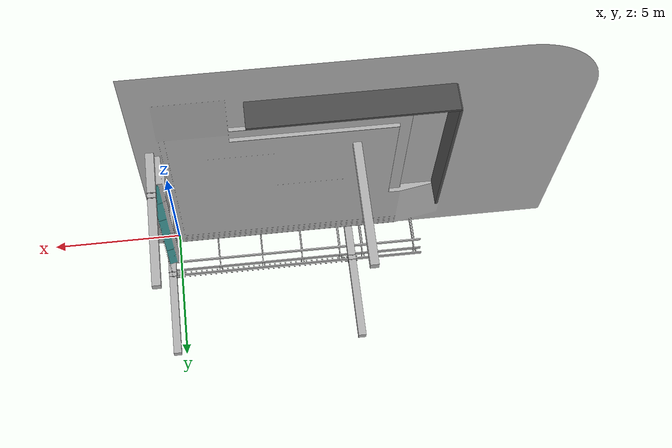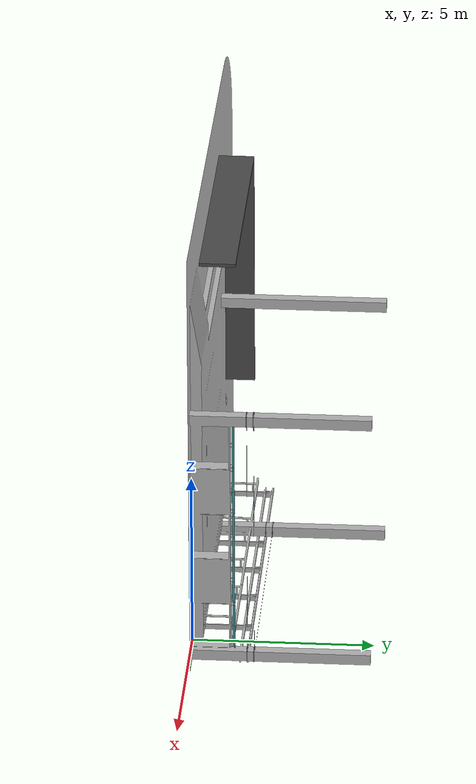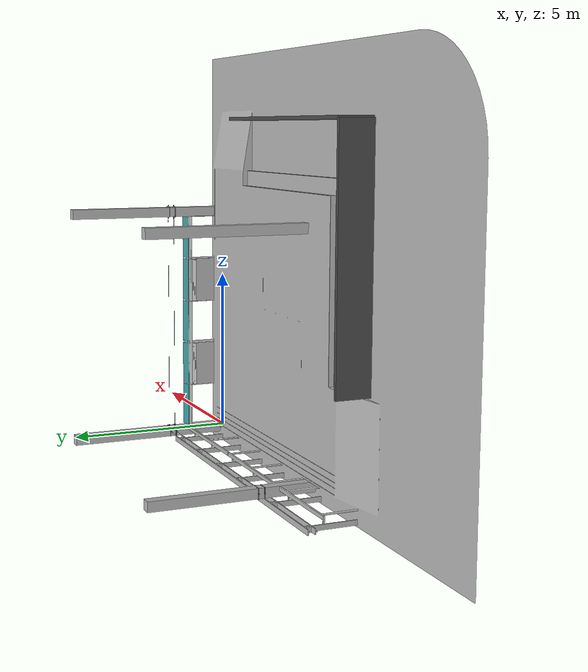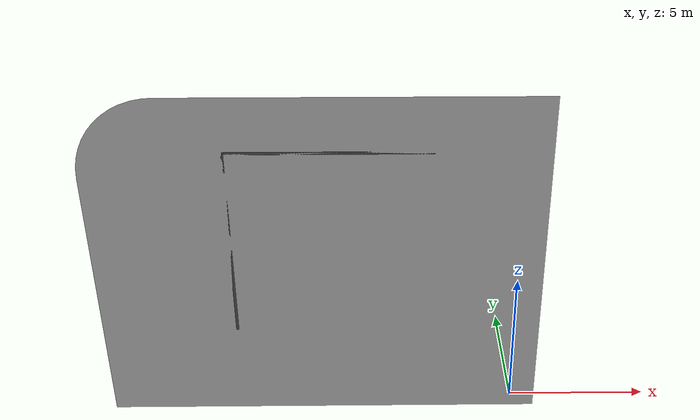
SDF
<?xml version="1.0" ?>
<sdf version="1.4">
    <model name="room">
      <static>true</static>
      <link name="body">
        <visual name="visual">
          <geometry>
            <mesh><uri>model://room/room.dae</uri></mesh>
          </geometry>
        </visual>
        <!-- There are 3 stair steps at the rim of the floor. floor_2 is the same height as the 2nd step. -->
        <collision name='floor_2'>
          <pose>-4.3625 0.16 4.195 0 0 0</pose>
          <geometry>
            <box>
              <size>8.725 0.01 8.39</size>
            </box>
          </geometry>
          <max_contacts>10</max_contacts>
          <surface>
            <bounce/>
            <contact>
              <ode/>
            </contact>
            <friction>
              <ode>
                <mu>100</mu>
                <mu2>50</mu2>
              </ode>
            </friction>
          </surface>
        </collision>
        <!-- There are 3 stair steps at the rim of the floor. floor_3 is the same height as the 3rd step and the highest. -->
        <collision name='floor_3'>
          <pose>-4.138 0.30 3.97 0 0 0</pose>
          <geometry>
            <box>
              <size>8.275 0.01 7.94</size>
            </box>
          </geometry>
          <max_contacts>10</max_contacts>
          <surface>
            <bounce/>
            <contact>
              <ode/>
            </contact>
            <friction>
              <ode>
                <mu>100</mu>
                <mu2>50</mu2>
              </ode>
            </friction>
          </surface>
        </collision>
        <!-- slope at north-west (relative to the map) -->
        <collision name='floor_slope_nw'>
          <pose>-9.625 0.15 1.45 1.57 0 0.169</pose>
          <geometry>
            <box><size>1.825 2.9 0.01</size></box>
          </geometry>
          <max_contacts>10</max_contacts>
          <surface>
            <bounce/>
            <contact>
              <ode/>
            </contact>
            <friction>
              <ode>
                <mu>100</mu>
                <mu2>50</mu2>
              </ode>
            </friction>
          </surface>
        </collision>
        <collision name='floor_bridge_slope_nw'>

          <pose>-8.5 0.3 1.475 1.57 0 0</pose>
          <geometry>
            <box><size>0.475 2.9 0.01</size></box> <!-- x=8.725-8.275 y: 0.45 in design is a bit short so padded to mind the gap -->
          </geometry>
          <max_contacts>10</max_contacts>
          <surface>
            <bounce/>
            <contact>
              <ode/>
            </contact>
            <friction>
              <ode>
                <mu>100</mu>
                <mu2>50</mu2>
              </ode>
            </friction>
          </surface>
        </collision>
        <!-- slope at souwth-east (relative to the map) -->
        <collision name='floor_slope_se'>
          <pose>-1.2 0.1525 9.34 1.739 0 0</pose> <!-- z: calculated value is 9.290 but is too close to the origin, so padded -->
          <geometry>
            <box><size>2.4 1.825 0.01</size> <!-- y: Calculated value is 1.825 but is short to mind the gap so padded. -->
            </box>
          </geometry>
          <max_contacts>10</max_contacts>
          <surface>
            <bounce/>
            <contact>
              <ode/>
            </contact>
            <friction>
              <ode>
                <mu>100</mu>
                <mu2>50</mu2>
              </ode>
            </friction>
          </surface>
        </collision>
        <collision name='floor_bridge_slope_se'>
          <pose>-1.2 0.3 8.195 1.57 0 0</pose>
          <geometry>
            <box><size>2.4 0.51 0.01</size></box> <!-- y: 0.45 in design is a bit short so padded to mind the gap -->
          </geometry>
          <max_contacts>10</max_contacts>
          <surface>
            <bounce/>
            <contact>
              <ode/>
            </contact>
            <friction>
              <ode>
                <mu>100</mu>
                <mu2>50</mu2>
              </ode>
            </friction>
          </surface>
        </collision>
        <collision name='pillar'>
          <pose>-6.85 2 7.05 1.57 0 0</pose>
          <geometry>
            <box>
              <size>0.275 0.275 4</size>
            </box>
          </geometry>
          <max_contacts>10</max_contacts>
          <surface>
            <bounce/>
            <contact>
              <ode/>
            </contact>
            <friction>
              <ode>
                <mu>100</mu>
                <mu2>50</mu2>
              </ode>
            </friction>
          </surface>
        </collision>
        <!-- Relative north in the designsheet. Handrail z is going along negative position. -->
        <collision name='handrail_north'>
          <pose>-5.2625 0.7 -0.11 1.57 0 0</pose>
          <geometry>
            <box>
              <size>8.725 0.15 0.8</size> <!-- z=0.79 (heater) + 0.01 -->
            </box>
          </geometry>
          <max_contacts>10</max_contacts>
          <surface>
            <bounce/>
            <contact>
              <ode/>
            </contact>
            <friction>
              <ode>
                <mu>100</mu>
                <mu2>50</mu2>
              </ode>
            </friction>
          </surface>
        </collision>
        <!-- Relative east in the designsheet. Handrail x is going along positive position. -->
        <collision name='handrail_east'>
          <pose>0 0.7 3.73 1.57 1.57 0</pose>
          <geometry>
            <box>
              <size>7.50 0.15 0.8</size> <!-- z=0.79 (heater) + 0.01 -->
            </box>
          </geometry>
          <max_contacts>10</max_contacts>
          <surface>
            <bounce/>
            <contact>
              <ode/>
            </contact>
            <friction>
              <ode>
                <mu>100</mu>
                <mu2>50</mu2>
              </ode>
            </friction>
          </surface>
        </collision>
        <visual name="wall_west_visual">
          <pose>-10.0 0.5 6.5 0.0 0.0 0.0</pose>
          <geometry>
            <box>
              <size>0.1 1.0 7.0</size>
            </box>
          </geometry>
          <material>
            <ambient>0.3 0.3 0.3 1</ambient>
            <diffuse>0.3 0.3 0.3 1</diffuse>
            <specular>0 0 0 1</specular>
          </material>
        </visual>
        <collision name='wall_west_collision'>
          <pose>-10.0 0.5 6.5 0.0 0.0 0.0</pose>
          <geometry>
            <box>
              <size>0.1 1.0 7.0</size>
            </box>
          </geometry>
          <max_contacts>10</max_contacts>
          <surface>
            <bounce/>
            <contact>
              <ode/>
            </contact>
            <friction>
              <ode>
                <mu>100</mu>
                <mu2>50</mu2>
              </ode>
            </friction>
          </surface>
        </collision>
        <visual name="wall_south_visual">
          <pose>-6.5 0.5 10.0 0.0 0.0 0.0</pose>
          <geometry>
            <box>
              <size>7.0 1.0 0.1</size>
            </box>
          </geometry>
          <material>
            <ambient>0.3 0.3 0.3 1</ambient>
            <diffuse>0.3 0.3 0.3 1</diffuse>
            <specular>0 0 0 1</specular>
          </material>
        </visual>
        <collision name='wall_south_collision'>
          <pose>-6.5 0.5 10.0 0.0 0.0 0.0</pose>
          <geometry>
            <box>
              <size>7.0 1.0 0.1</size>
            </box>
          </geometry>
          <max_contacts>10</max_contacts>
          <surface>
            <bounce/>
            <contact>
              <ode/>
            </contact>
            <friction>
              <ode>
                <mu>100</mu>
                <mu2>50</mu2>
              </ode>
            </friction>
          </surface>
        </collision>
      </link>
    </model>
</sdf>
